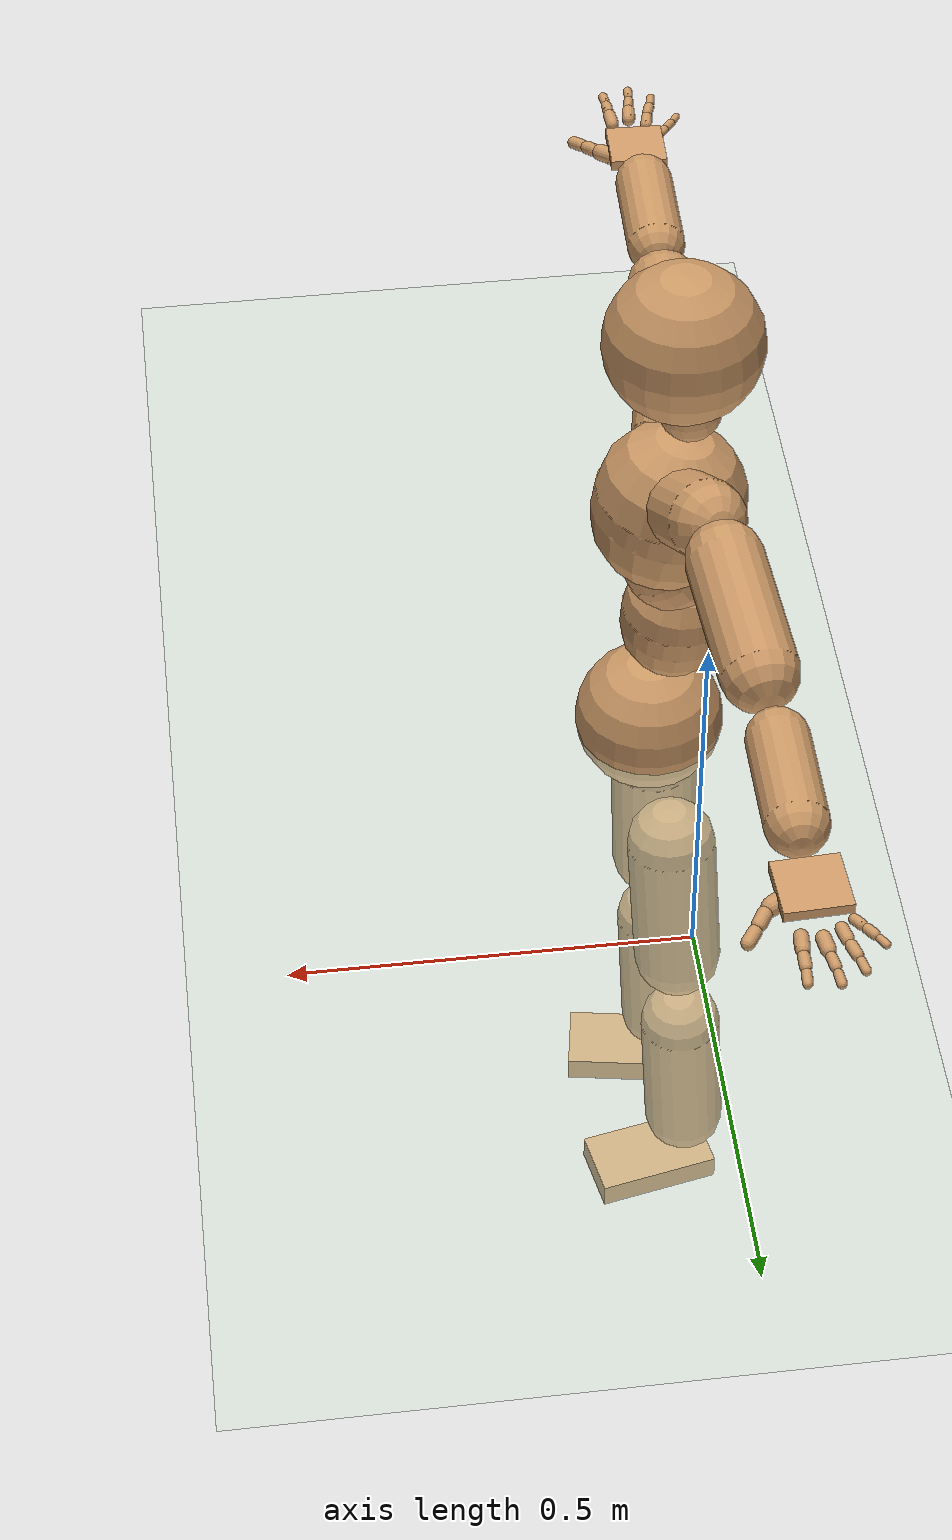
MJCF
<mujoco model="humanoid">
  <compiler coordinate="local" angle="radian"/>
  <default>
    <joint damping="0.0" armature="0.01" stiffness="0.0" limited="true"/>
    <geom conaffinity="1" condim="3" contype="7" margin="0.001" rgba="0.8 0.6 .4 1"/>
  </default>
  <asset>
    <texture type="skybox" builtin="gradient" rgb1=".4 .5 .6" rgb2="0 0 0" width="100" height="100"/>
    <texture builtin="flat" height="1278" mark="cross" markrgb="1 1 1" name="texgeom" random="0.01" rgb1="0.8 0.6 0.4" rgb2="0.8 0.6 0.4" type="cube" width="127"/>
    <texture builtin="checker" height="100" name="texplane" rgb1="0 0 0" rgb2="0.8 0.8 0.8" type="2d" width="100"/>
    <material name="MatPlane" reflectance="0.5" shininess="1" specular="1" texrepeat="60 60" texture="texplane"/>
    <material name="geom" texture="texgeom" texuniform="true"/>
  </asset>
  <worldbody>
    <light cutoff="100" diffuse="1 1 1" dir="-0 0 -1.3" directional="true" exponent="1" pos="0 0 1.3" specular=".1 .1 .1"/>
    <geom conaffinity="1" condim="3" name="floor" pos="0 0 0" rgba="0.8 0.9 0.8 1" size="100 100 .2" type="plane" material="MatPlane"/>
    <body name="Pelvis" pos="0.0006 -0.3701 0.0128">
      <freejoint name="Pelvis"/>
      <geom type="sphere" contype="1" conaffinity="1" density="500" size="0.0971" pos="0.0000 0.0000 0.0000" name="Pelvis"/>
      <body name="L_Hip" pos="-0.0184 0.073 -0.0932">
        <joint name="L_Hip_x" type="hinge" pos="0 0 0" axis="1 0 0" stiffness="800" damping="80" armature="0.02" range="-180.0000 180.0000"/>
        <joint name="L_Hip_y" type="hinge" pos="0 0 0" axis="0 1 0" stiffness="800" damping="80" armature="0.02" range="-180.0000 180.0000"/>
        <joint name="L_Hip_z" type="hinge" pos="0 0 0" axis="0 0 1" stiffness="800" damping="80" armature="0.02" range="-180.0000 180.0000"/>
        <geom type="capsule" contype="1" conaffinity="1" density="500" fromto="-0.0041 0.0049 -0.0722 -0.0165 0.0196 -0.2886" size="0.0588" name="L_Hip"/>
        <body name="L_Knee" pos="-0.0206 0.0245 -0.3608">
          <joint name="L_Knee_x" type="hinge" pos="0 0 0" axis="1 0 0" stiffness="800" damping="80" armature="0.02" range="-180.0000 180.0000"/>
          <joint name="L_Knee_y" type="hinge" pos="0 0 0" axis="0 1 0" stiffness="800" damping="80" armature="0.02" range="-180.0000 180.0000"/>
          <joint name="L_Knee_z" type="hinge" pos="0 0 0" axis="0 0 1" stiffness="800" damping="80" armature="0.02" range="-180.0000 180.0000"/>
          <geom type="capsule" contype="1" conaffinity="1" density="500" fromto="-0.0043 -0.0020 -0.0730 -0.0171 -0.0080 -0.2920" size="0.055" name="L_Knee"/>
          <body name="L_Ankle" pos="-0.0214 -0.0099 -0.3651">
            <joint name="L_Ankle_x" type="hinge" pos="0 0 0" axis="1 0 0" stiffness="800" damping="80" armature="0.02" range="-180.0000 180.0000"/>
            <joint name="L_Ankle_y" type="hinge" pos="0 0 0" axis="0 1 0" stiffness="800" damping="80" armature="0.02" range="-180.0000 180.0000"/>
            <joint name="L_Ankle_z" type="hinge" pos="0 0 0" axis="0 0 1" stiffness="800" damping="80" armature="0.02" range="-180.0000 180.0000"/>
            <geom type="box" contype="1" conaffinity="1" density="500" pos="0.0533 0.0105 -0.0206" size="0.0846 0.0464 0.0193" quat="0.9952 0.0000 0.0000 0.0974" name="L_Ankle"/>
            <body name="L_Toe" pos="0.1066 0.0211 -0.0411">
              <joint name="L_Toe_x" type="hinge" pos="0 0 0" axis="1 0 0" stiffness="500" damping="50" armature="0.02" range="-180.0000 180.0000"/>
              <joint name="L_Toe_y" type="hinge" pos="0 0 0" axis="0 1 0" stiffness="500" damping="50" armature="0.02" range="-180.0000 180.0000"/>
              <joint name="L_Toe_z" type="hinge" pos="0 0 0" axis="0 0 1" stiffness="500" damping="50" armature="0.02" range="-180.0000 180.0000"/>
              <geom type="box" contype="1" conaffinity="1" density="500" pos="0.0000 0.0000 0.0215" size="0.0009 0.0023 0.001" quat="0.9945 0.0000 0.0000 0.1044" name="L_Toe"/>
            </body>
          </body>
        </body>
      </body>
      <body name="R_Hip" pos="-0.0195 -0.0724 -0.1">
        <joint name="R_Hip_x" type="hinge" pos="0 0 0" axis="1 0 0" stiffness="800" damping="80" armature="0.02" range="-180.0000 180.0000"/>
        <joint name="R_Hip_y" type="hinge" pos="0 0 0" axis="0 1 0" stiffness="800" damping="80" armature="0.02" range="-180.0000 180.0000"/>
        <joint name="R_Hip_z" type="hinge" pos="0 0 0" axis="0 0 1" stiffness="800" damping="80" armature="0.02" range="-180.0000 180.0000"/>
        <geom type="capsule" contype="1" conaffinity="1" density="500" fromto="-0.0029 -0.0057 -0.0712 -0.0117 -0.0227 -0.2849" size="0.0586" name="R_Hip"/>
        <body name="R_Knee" pos="-0.0146 -0.0284 -0.3562">
          <joint name="R_Knee_x" type="hinge" pos="0 0 0" axis="1 0 0" stiffness="800" damping="80" armature="0.02" range="-180.0000 180.0000"/>
          <joint name="R_Knee_y" type="hinge" pos="0 0 0" axis="0 1 0" stiffness="800" damping="80" armature="0.02" range="-180.0000 180.0000"/>
          <joint name="R_Knee_z" type="hinge" pos="0 0 0" axis="0 0 1" stiffness="800" damping="80" armature="0.02" range="-180.0000 180.0000"/>
          <geom type="capsule" contype="1" conaffinity="1" density="500" fromto="-0.0035 0.0011 -0.0713 -0.0141 0.0044 -0.2853" size="0.055" name="R_Knee"/>
          <body name="R_Ankle" pos="-0.0176 0.0055 -0.3566">
            <joint name="R_Ankle_x" type="hinge" pos="0 0 0" axis="1 0 0" stiffness="800" damping="80" armature="0.02" range="-180.0000 180.0000"/>
            <joint name="R_Ankle_y" type="hinge" pos="0 0 0" axis="0 1 0" stiffness="800" damping="80" armature="0.02" range="-180.0000 180.0000"/>
            <joint name="R_Ankle_z" type="hinge" pos="0 0 0" axis="0 0 1" stiffness="800" damping="80" armature="0.02" range="-180.0000 180.0000"/>
            <geom type="box" contype="1" conaffinity="1" density="500" pos="0.0501 -0.0086 -0.0224" size="0.0846 0.0464 0.0193" quat="0.9964 0.0000 0.0000 -0.0845" name="R_Ankle"/>
            <body name="R_Toe" pos="0.1002 -0.0171 -0.0448">
              <joint name="R_Toe_x" type="hinge" pos="0 0 0" axis="1 0 0" stiffness="500" damping="50" armature="0.02" range="-180.0000 180.0000"/>
              <joint name="R_Toe_y" type="hinge" pos="0 0 0" axis="0 1 0" stiffness="500" damping="50" armature="0.02" range="-180.0000 180.0000"/>
              <joint name="R_Toe_z" type="hinge" pos="0 0 0" axis="0 0 1" stiffness="500" damping="50" armature="0.02" range="-180.0000 180.0000"/>
              <geom type="box" contype="1" conaffinity="1" density="500" pos="0.0000 0.0000 0.0233" size="0.0009 0.0023 0.001" quat="0.9973 0.0000 0.0000 -0.0733" name="R_Toe"/>
            </body>
          </body>
        </body>
      </body>
      <body name="Torso" pos="-0.0238 -0.005 0.1074">
        <joint name="Torso_x" type="hinge" pos="0 0 0" axis="1 0 0" stiffness="1000" damping="100" armature="0.02" range="-180.0000 180.0000"/>
        <joint name="Torso_y" type="hinge" pos="0 0 0" axis="0 1 0" stiffness="1000" damping="100" armature="0.02" range="-180.0000 180.0000"/>
        <joint name="Torso_z" type="hinge" pos="0 0 0" axis="0 0 1" stiffness="1000" damping="100" armature="0.02" range="-180.0000 180.0000"/>
        <geom type="capsule" contype="1" conaffinity="1" density="500" fromto="-0.0063 0.0050 0.0862 -0.0042 0.0034 0.0575" size="0.0696" name="Torso"/>
        <body name="Spine" pos="-0.0105 0.0084 0.1436">
          <joint name="Spine_x" type="hinge" pos="0 0 0" axis="1 0 0" stiffness="1000" damping="100" armature="0.02" range="-180.0000 180.0000"/>
          <joint name="Spine_y" type="hinge" pos="0 0 0" axis="0 1 0" stiffness="1000" damping="100" armature="0.02" range="-180.0000 180.0000"/>
          <joint name="Spine_z" type="hinge" pos="0 0 0" axis="0 0 1" stiffness="1000" damping="100" armature="0.02" range="-180.0000 180.0000"/>
          <geom type="capsule" contype="1" conaffinity="1" density="500" fromto="0.0185 -0.0026 0.0297 0.0123 -0.0017 0.0198" size="0.0598" name="Spine"/>
          <body name="Chest" pos="0.0308 -0.0043 0.0494">
            <joint name="Chest_x" type="hinge" pos="0 0 0" axis="1 0 0" stiffness="1000" damping="100" armature="0.02" range="-180.0000 180.0000"/>
            <joint name="Chest_y" type="hinge" pos="0 0 0" axis="0 1 0" stiffness="1000" damping="100" armature="0.02" range="-180.0000 180.0000"/>
            <joint name="Chest_z" type="hinge" pos="0 0 0" axis="0 0 1" stiffness="1000" damping="100" armature="0.02" range="-180.0000 180.0000"/>
            <geom type="capsule" contype="1" conaffinity="1" density="500" fromto="-0.0145 -0.0016 0.0840 -0.0097 -0.0011 0.0560" size="0.0957" name="Chest"/>
            <body name="Neck" pos="-0.0369 -0.0058 0.1929">
              <joint name="Neck_x" type="hinge" pos="0 0 0" axis="1 0 0" stiffness="500" damping="50" armature="0.02" range="-180.0000 180.0000"/>
              <joint name="Neck_y" type="hinge" pos="0 0 0" axis="0 1 0" stiffness="500" damping="50" armature="0.02" range="-180.0000 180.0000"/>
              <joint name="Neck_z" type="hinge" pos="0 0 0" axis="0 0 1" stiffness="500" damping="50" armature="0.02" range="-180.0000 180.0000"/>
              <geom type="capsule" contype="1" conaffinity="1" density="500" fromto="0.0031 0.0018 0.0279 0.0126 0.0071 0.1115" size="0.0394" name="Neck"/>
              <body name="Head" pos="0.0157 0.0088 0.1394">
                <joint name="Head_x" type="hinge" pos="0 0 0" axis="1 0 0" stiffness="500" damping="50" armature="0.02" range="-180.0000 180.0000"/>
                <joint name="Head_y" type="hinge" pos="0 0 0" axis="0 1 0" stiffness="500" damping="50" armature="0.02" range="-180.0000 180.0000"/>
                <joint name="Head_z" type="hinge" pos="0 0 0" axis="0 0 1" stiffness="500" damping="50" armature="0.02" range="-180.0000 180.0000"/>
                <geom type="sphere" contype="1" conaffinity="1" density="500" size="0.0986" pos="0.0000 0.0000 0.0000" name="Head"/>
              </body>
            </body>
            <body name="L_Thorax" pos="-0.0149 0.0509 0.1155">
              <joint name="L_Thorax_x" type="hinge" pos="0 0 0" axis="1 0 0" stiffness="500" damping="50" armature="0.02" range="-180.0000 180.0000"/>
              <joint name="L_Thorax_y" type="hinge" pos="0 0 0" axis="0 1 0" stiffness="500" damping="50" armature="0.02" range="-180.0000 180.0000"/>
              <joint name="L_Thorax_z" type="hinge" pos="0 0 0" axis="0 0 1" stiffness="500" damping="50" armature="0.02" range="-180.0000 180.0000"/>
              <geom type="capsule" contype="1" conaffinity="1" density="500" fromto="-0.0053 0.0172 0.0099 -0.0213 0.0689 0.0395" size="0.0497" name="L_Thorax"/>
              <body name="L_Shoulder" pos="-0.0266 0.0861 0.0494">
                <joint name="L_Shoulder_x" type="hinge" pos="0 0 0" axis="1 0 0" stiffness="500" damping="50" armature="0.02" range="-180.0000 180.0000"/>
                <joint name="L_Shoulder_y" type="hinge" pos="0 0 0" axis="0 1 0" stiffness="500" damping="50" armature="0.02" range="-180.0000 180.0000"/>
                <joint name="L_Shoulder_z" type="hinge" pos="0 0 0" axis="0 0 1" stiffness="500" damping="50" armature="0.02" range="-180.0000 180.0000"/>
                <geom type="capsule" contype="1" conaffinity="1" density="500" fromto="-0.0052 0.0527 -0.0104 -0.0210 0.2110 -0.0415" size="0.0481" name="L_Shoulder"/>
                <body name="L_Elbow" pos="-0.0262 0.2637 -0.0519">
                  <joint name="L_Elbow_x" type="hinge" pos="0 0 0" axis="1 0 0" stiffness="500" damping="50" armature="0.02" range="-720.0000 720.0000"/>
                  <joint name="L_Elbow_y" type="hinge" pos="0 0 0" axis="0 1 0" stiffness="500" damping="50" armature="0.02" range="-720.0000 720.0000"/>
                  <joint name="L_Elbow_z" type="hinge" pos="0 0 0" axis="0 0 1" stiffness="500" damping="50" armature="0.02" range="-720.0000 720.0000"/>
                  <geom type="capsule" contype="1" conaffinity="1" density="500" fromto="0.0007 0.0444 0.0015 0.0029 0.1775 0.0060" size="0.038" name="L_Elbow"/>
                  <body name="L_Wrist" pos="0.0036 0.2219 0.0075">
                    <joint name="L_Wrist_x" type="hinge" pos="0 0 0" axis="1 0 0" stiffness="300" damping="30" armature="0.02" range="-180.0000 180.0000"/>
                    <joint name="L_Wrist_y" type="hinge" pos="0 0 0" axis="0 1 0" stiffness="300" damping="30" armature="0.02" range="-180.0000 180.0000"/>
                    <joint name="L_Wrist_z" type="hinge" pos="0 0 0" axis="0 0 1" stiffness="300" damping="30" armature="0.02" range="-180.0000 180.0000"/>
                    <geom type="box" contype="1" conaffinity="1" density="500" pos="-0.0018 0.0416 -0.0081" size="0.0376 0.0399 0.007" quat="0.7226 0.0000 0.0000 -0.6913" name="L_Wrist"/>
                    <body name="L_Index1" pos="0.0203 0.0981 -0.0143">
                      <joint name="L_Index1_x" type="hinge" pos="0 0 0" axis="1 0 0" stiffness="100" damping="10" armature="0.02" range="-180.0000 180.0000"/>
                      <joint name="L_Index1_y" type="hinge" pos="0 0 0" axis="0 1 0" stiffness="100" damping="10" armature="0.02" range="-180.0000 180.0000"/>
                      <joint name="L_Index1_z" type="hinge" pos="0 0 0" axis="0 0 1" stiffness="100" damping="10" armature="0.02" range="-180.0000 180.0000"/>
                      <geom type="capsule" contype="1" conaffinity="1" density="500" fromto="0.0006 0.0062 0.0005 0.0022 0.0247 0.0021" size="0.0087" name="L_Index1"/>
                      <body name="L_Index2" pos="0.0028 0.0308 0.0027">
                        <joint name="L_Index2_x" type="hinge" pos="0 0 0" axis="1 0 0" stiffness="100" damping="10" armature="0.02" range="-180.0000 180.0000"/>
                        <joint name="L_Index2_y" type="hinge" pos="0 0 0" axis="0 1 0" stiffness="100" damping="10" armature="0.02" range="-180.0000 180.0000"/>
                        <joint name="L_Index2_z" type="hinge" pos="0 0 0" axis="0 0 1" stiffness="100" damping="10" armature="0.02" range="-180.0000 180.0000"/>
                        <geom type="capsule" contype="1" conaffinity="1" density="500" fromto="0.0001 0.0044 -0.0003 0.0003 0.0175 -0.0011" size="0.0072" name="L_Index2"/>
                        <body name="L_Index3" pos="0.0004 0.0218 -0.0014">
                          <joint name="L_Index3_x" type="hinge" pos="0 0 0" axis="1 0 0" stiffness="100" damping="10" armature="0.02" range="-180.0000 180.0000"/>
                          <joint name="L_Index3_y" type="hinge" pos="0 0 0" axis="0 1 0" stiffness="100" damping="10" armature="0.02" range="-180.0000 180.0000"/>
                          <joint name="L_Index3_z" type="hinge" pos="0 0 0" axis="0 0 1" stiffness="100" damping="10" armature="0.02" range="-180.0000 180.0000"/>
                          <geom type="capsule" contype="1" conaffinity="1" density="500" fromto="0.0005 0.0048 0.0001 0.0019 0.0191 0.0005" size="0.006" name="L_Index3"/>
                        </body>
                      </body>
                    </body>
                    <body name="L_Middle1" pos="-0.0015 0.1047 -0.0121">
                      <joint name="L_Middle1_x" type="hinge" pos="0 0 0" axis="1 0 0" stiffness="100" damping="10" armature="0.02" range="-180.0000 180.0000"/>
                      <joint name="L_Middle1_y" type="hinge" pos="0 0 0" axis="0 1 0" stiffness="100" damping="10" armature="0.02" range="-180.0000 180.0000"/>
                      <joint name="L_Middle1_z" type="hinge" pos="0 0 0" axis="0 0 1" stiffness="100" damping="10" armature="0.02" range="-180.0000 180.0000"/>
                      <geom type="capsule" contype="1" conaffinity="1" density="500" fromto="-0.0007 0.0058 0.0003 -0.0029 0.0234 0.0011" size="0.0089" name="L_Middle1"/>
                      <body name="L_Middle2" pos="-0.0036 0.0292 0.0013">
                        <joint name="L_Middle2_x" type="hinge" pos="0 0 0" axis="1 0 0" stiffness="100" damping="10" armature="0.02" range="-180.0000 180.0000"/>
                        <joint name="L_Middle2_y" type="hinge" pos="0 0 0" axis="0 1 0" stiffness="100" damping="10" armature="0.02" range="-180.0000 180.0000"/>
                        <joint name="L_Middle2_z" type="hinge" pos="0 0 0" axis="0 0 1" stiffness="100" damping="10" armature="0.02" range="-180.0000 180.0000"/>
                        <geom type="capsule" contype="1" conaffinity="1" density="500" fromto="-0.0007 0.0045 -0.0001 -0.0029 0.0181 -0.0004" size="0.0066" name="L_Middle2"/>
                        <body name="L_Middle3" pos="-0.0036 0.0226 -0.0006">
                          <joint name="L_Middle3_x" type="hinge" pos="0 0 0" axis="1 0 0" stiffness="100" damping="10" armature="0.02" range="-180.0000 180.0000"/>
                          <joint name="L_Middle3_y" type="hinge" pos="0 0 0" axis="0 1 0" stiffness="100" damping="10" armature="0.02" range="-180.0000 180.0000"/>
                          <joint name="L_Middle3_z" type="hinge" pos="0 0 0" axis="0 0 1" stiffness="100" damping="10" armature="0.02" range="-180.0000 180.0000"/>
                          <geom type="capsule" contype="1" conaffinity="1" density="500" fromto="-0.0003 0.0049 0.0003 -0.0013 0.0197 0.0012" size="0.0058" name="L_Middle3"/>
                        </body>
                      </body>
                    </body>
                    <body name="L_Pinky1" pos="-0.0394 0.0799 -0.0191">
                      <joint name="L_Pinky1_x" type="hinge" pos="0 0 0" axis="1 0 0" stiffness="100" damping="10" armature="0.02" range="-180.0000 180.0000"/>
                      <joint name="L_Pinky1_y" type="hinge" pos="0 0 0" axis="0 1 0" stiffness="100" damping="10" armature="0.02" range="-180.0000 180.0000"/>
                      <joint name="L_Pinky1_z" type="hinge" pos="0 0 0" axis="0 0 1" stiffness="100" damping="10" armature="0.02" range="-180.0000 180.0000"/>
                      <geom type="capsule" contype="1" conaffinity="1" density="500" fromto="-0.0023 0.0028 -0.0001 -0.0093 0.0113 -0.0003" size="0.0064" name="L_Pinky1"/>
                      <body name="L_Pinky2" pos="-0.0116 0.0141 -0.0004">
                        <joint name="L_Pinky2_x" type="hinge" pos="0 0 0" axis="1 0 0" stiffness="100" damping="10" armature="0.02" range="-180.0000 180.0000"/>
                        <joint name="L_Pinky2_y" type="hinge" pos="0 0 0" axis="0 1 0" stiffness="100" damping="10" armature="0.02" range="-180.0000 180.0000"/>
                        <joint name="L_Pinky2_z" type="hinge" pos="0 0 0" axis="0 0 1" stiffness="100" damping="10" armature="0.02" range="-180.0000 180.0000"/>
                        <geom type="capsule" contype="1" conaffinity="1" density="500" fromto="-0.0023 0.0029 -0.0002 -0.0090 0.0116 -0.0007" size="0.0062" name="L_Pinky2"/>
                        <body name="L_Pinky3" pos="-0.0113 0.0145 -0.0009">
                          <joint name="L_Pinky3_x" type="hinge" pos="0 0 0" axis="1 0 0" stiffness="100" damping="10" armature="0.02" range="-180.0000 180.0000"/>
                          <joint name="L_Pinky3_y" type="hinge" pos="0 0 0" axis="0 1 0" stiffness="100" damping="10" armature="0.02" range="-180.0000 180.0000"/>
                          <joint name="L_Pinky3_z" type="hinge" pos="0 0 0" axis="0 0 1" stiffness="100" damping="10" armature="0.02" range="-180.0000 180.0000"/>
                          <geom type="capsule" contype="1" conaffinity="1" density="500" fromto="-0.0019 0.0033 0.0002 -0.0074 0.0132 0.0009" size="0.0048" name="L_Pinky3"/>
                        </body>
                      </body>
                    </body>
                    <body name="L_Ring1" pos="-0.0238 0.0928 -0.0144">
                      <joint name="L_Ring1_x" type="hinge" pos="0 0 0" axis="1 0 0" stiffness="100" damping="10" armature="0.02" range="-180.0000 180.0000"/>
                      <joint name="L_Ring1_y" type="hinge" pos="0 0 0" axis="0 1 0" stiffness="100" damping="10" armature="0.02" range="-180.0000 180.0000"/>
                      <joint name="L_Ring1_z" type="hinge" pos="0 0 0" axis="0 0 1" stiffness="100" damping="10" armature="0.02" range="-180.0000 180.0000"/>
                      <geom type="capsule" contype="1" conaffinity="1" density="500" fromto="-0.0010 0.0053 0.0003 -0.0041 0.0212 0.0013" size="0.0077" name="L_Ring1"/>
                      <body name="L_Ring2" pos="-0.0051 0.0265 0.0016">
                        <joint name="L_Ring2_x" type="hinge" pos="0 0 0" axis="1 0 0" stiffness="100" damping="10" armature="0.02" range="-180.0000 180.0000"/>
                        <joint name="L_Ring2_y" type="hinge" pos="0 0 0" axis="0 1 0" stiffness="100" damping="10" armature="0.02" range="-180.0000 180.0000"/>
                        <joint name="L_Ring2_z" type="hinge" pos="0 0 0" axis="0 0 1" stiffness="100" damping="10" armature="0.02" range="-180.0000 180.0000"/>
                        <geom type="capsule" contype="1" conaffinity="1" density="500" fromto="-0.0014 0.0043 -0.0002 -0.0055 0.0174 -0.0007" size="0.0071" name="L_Ring2"/>
                        <body name="L_Ring3" pos="-0.0069 0.0217 -0.0009">
                          <joint name="L_Ring3_x" type="hinge" pos="0 0 0" axis="1 0 0" stiffness="100" damping="10" armature="0.02" range="-180.0000 180.0000"/>
                          <joint name="L_Ring3_y" type="hinge" pos="0 0 0" axis="0 1 0" stiffness="100" damping="10" armature="0.02" range="-180.0000 180.0000"/>
                          <joint name="L_Ring3_z" type="hinge" pos="0 0 0" axis="0 0 1" stiffness="100" damping="10" armature="0.02" range="-180.0000 180.0000"/>
                          <geom type="capsule" contype="1" conaffinity="1" density="500" fromto="-0.0010 0.0047 0.0002 -0.0039 0.0190 0.0009" size="0.0055" name="L_Ring3"/>
                        </body>
                      </body>
                    </body>
                    <body name="L_Thumb1" pos="0.026 0.0404 -0.0212">
                      <joint name="L_Thumb1_x" type="hinge" pos="0 0 0" axis="1 0 0" stiffness="100" damping="10" armature="0.02" range="-180.0000 180.0000"/>
                      <joint name="L_Thumb1_y" type="hinge" pos="0 0 0" axis="0 1 0" stiffness="100" damping="10" armature="0.02" range="-180.0000 180.0000"/>
                      <joint name="L_Thumb1_z" type="hinge" pos="0 0 0" axis="0 0 1" stiffness="100" damping="10" armature="0.02" range="-180.0000 180.0000"/>
                      <geom type="capsule" contype="1" conaffinity="1" density="500" fromto="0.0046 0.0033 0.0001 0.0185 0.0133 0.0006" size="0.0113" name="L_Thumb1"/>
                      <body name="L_Thumb2" pos="0.0231 0.0166 0.0007">
                        <joint name="L_Thumb2_x" type="hinge" pos="0 0 0" axis="1 0 0" stiffness="100" damping="10" armature="0.02" range="-180.0000 180.0000"/>
                        <joint name="L_Thumb2_y" type="hinge" pos="0 0 0" axis="0 1 0" stiffness="100" damping="10" armature="0.02" range="-180.0000 180.0000"/>
                        <joint name="L_Thumb2_z" type="hinge" pos="0 0 0" axis="0 0 1" stiffness="100" damping="10" armature="0.02" range="-180.0000 180.0000"/>
                        <geom type="capsule" contype="1" conaffinity="1" density="500" fromto="0.0028 0.0039 -0.0011 0.0112 0.0157 -0.0045" size="0.0089" name="L_Thumb2"/>
                        <body name="L_Thumb3" pos="0.014 0.0197 -0.0056">
                          <joint name="L_Thumb3_x" type="hinge" pos="0 0 0" axis="1 0 0" stiffness="100" damping="10" armature="0.02" range="-180.0000 180.0000"/>
                          <joint name="L_Thumb3_y" type="hinge" pos="0 0 0" axis="0 1 0" stiffness="100" damping="10" armature="0.02" range="-180.0000 180.0000"/>
                          <joint name="L_Thumb3_z" type="hinge" pos="0 0 0" axis="0 0 1" stiffness="100" damping="10" armature="0.02" range="-180.0000 180.0000"/>
                          <geom type="capsule" contype="1" conaffinity="1" density="500" fromto="0.0032 0.0043 -0.0007 0.0128 0.0173 -0.0029" size="0.0083" name="L_Thumb3"/>
                        </body>
                      </body>
                    </body>
                  </body>
                </body>
              </body>
            </body>
            <body name="R_Thorax" pos="-0.0209 -0.0533 0.1118">
              <joint name="R_Thorax_x" type="hinge" pos="0 0 0" axis="1 0 0" stiffness="500" damping="50" armature="0.02" range="-180.0000 180.0000"/>
              <joint name="R_Thorax_y" type="hinge" pos="0 0 0" axis="0 1 0" stiffness="500" damping="50" armature="0.02" range="-180.0000 180.0000"/>
              <joint name="R_Thorax_z" type="hinge" pos="0 0 0" axis="0 0 1" stiffness="500" damping="50" armature="0.02" range="-180.0000 180.0000"/>
              <geom type="capsule" contype="1" conaffinity="1" density="500" fromto="-0.0041 -0.0186 0.0105 -0.0164 -0.0743 0.0421" size="0.0508" name="R_Thorax"/>
              <body name="R_Shoulder" pos="-0.0205 -0.0929 0.0526">
                <joint name="R_Shoulder_x" type="hinge" pos="0 0 0" axis="1 0 0" stiffness="500" damping="50" armature="0.02" range="-180.0000 180.0000"/>
                <joint name="R_Shoulder_y" type="hinge" pos="0 0 0" axis="0 1 0" stiffness="500" damping="50" armature="0.02" range="-180.0000 180.0000"/>
                <joint name="R_Shoulder_z" type="hinge" pos="0 0 0" axis="0 0 1" stiffness="500" damping="50" armature="0.02" range="-180.0000 180.0000"/>
                <geom type="capsule" contype="1" conaffinity="1" density="500" fromto="-0.0038 -0.0508 -0.0096 -0.0153 -0.2034 -0.0385" size="0.0485" name="R_Shoulder"/>
                <body name="R_Elbow" pos="-0.0191 -0.2542 -0.0481">
                  <joint name="R_Elbow_x" type="hinge" pos="0 0 0" axis="1 0 0" stiffness="500" damping="50" armature="0.02" range="-720.0000 720.0000"/>
                  <joint name="R_Elbow_y" type="hinge" pos="0 0 0" axis="0 1 0" stiffness="500" damping="50" armature="0.02" range="-720.0000 720.0000"/>
                  <joint name="R_Elbow_z" type="hinge" pos="0 0 0" axis="0 0 1" stiffness="500" damping="50" armature="0.02" range="-720.0000 720.0000"/>
                  <geom type="capsule" contype="1" conaffinity="1" density="500" fromto="-0.0010 -0.0445 0.0007 -0.0041 -0.1780 0.0027" size="0.0382" name="R_Elbow"/>
                  <body name="R_Wrist" pos="-0.0051 -0.2226 0.0034">
                    <joint name="R_Wrist_x" type="hinge" pos="0 0 0" axis="1 0 0" stiffness="300" damping="30" armature="0.02" range="-180.0000 180.0000"/>
                    <joint name="R_Wrist_y" type="hinge" pos="0 0 0" axis="0 1 0" stiffness="300" damping="30" armature="0.02" range="-180.0000 180.0000"/>
                    <joint name="R_Wrist_z" type="hinge" pos="0 0 0" axis="0 0 1" stiffness="300" damping="30" armature="0.02" range="-180.0000 180.0000"/>
                    <geom type="box" contype="1" conaffinity="1" density="500" pos="-0.0011 -0.0410 -0.0077" size="0.0376 0.0375 0.0071" quat="0.7164 0.0000 0.0000 0.6977" name="R_Wrist"/>
                    <body name="R_Index1" pos="0.0218 -0.097 -0.0135">
                      <joint name="R_Index1_x" type="hinge" pos="0 0 0" axis="1 0 0" stiffness="100" damping="10" armature="0.02" range="-180.0000 180.0000"/>
                      <joint name="R_Index1_y" type="hinge" pos="0 0 0" axis="0 1 0" stiffness="100" damping="10" armature="0.02" range="-180.0000 180.0000"/>
                      <joint name="R_Index1_z" type="hinge" pos="0 0 0" axis="0 0 1" stiffness="100" damping="10" armature="0.02" range="-180.0000 180.0000"/>
                      <geom type="capsule" contype="1" conaffinity="1" density="500" fromto="0.0006 -0.0062 0.0005 0.0022 -0.0247 0.0021" size="0.0087" name="R_Index1"/>
                      <body name="R_Index2" pos="0.0028 -0.0308 0.0027">
                        <joint name="R_Index2_x" type="hinge" pos="0 0 0" axis="1 0 0" stiffness="100" damping="10" armature="0.02" range="-180.0000 180.0000"/>
                        <joint name="R_Index2_y" type="hinge" pos="0 0 0" axis="0 1 0" stiffness="100" damping="10" armature="0.02" range="-180.0000 180.0000"/>
                        <joint name="R_Index2_z" type="hinge" pos="0 0 0" axis="0 0 1" stiffness="100" damping="10" armature="0.02" range="-180.0000 180.0000"/>
                        <geom type="capsule" contype="1" conaffinity="1" density="500" fromto="0.0001 -0.0044 -0.0003 0.0003 -0.0175 -0.0011" size="0.0072" name="R_Index2"/>
                        <body name="R_Index3" pos="0.0004 -0.0218 -0.0014">
                          <joint name="R_Index3_x" type="hinge" pos="0 0 0" axis="1 0 0" stiffness="100" damping="10" armature="0.02" range="-180.0000 180.0000"/>
                          <joint name="R_Index3_y" type="hinge" pos="0 0 0" axis="0 1 0" stiffness="100" damping="10" armature="0.02" range="-180.0000 180.0000"/>
                          <joint name="R_Index3_z" type="hinge" pos="0 0 0" axis="0 0 1" stiffness="100" damping="10" armature="0.02" range="-180.0000 180.0000"/>
                          <geom type="capsule" contype="1" conaffinity="1" density="500" fromto="0.0005 -0.0040 0.0001 0.0019 -0.0159 0.0005" size="0.0063" name="R_Index3"/>
                        </body>
                      </body>
                    </body>
                    <body name="R_Middle1" pos="0 -0.1037 -0.0113">
                      <joint name="R_Middle1_x" type="hinge" pos="0 0 0" axis="1 0 0" stiffness="100" damping="10" armature="0.02" range="-180.0000 180.0000"/>
                      <joint name="R_Middle1_y" type="hinge" pos="0 0 0" axis="0 1 0" stiffness="100" damping="10" armature="0.02" range="-180.0000 180.0000"/>
                      <joint name="R_Middle1_z" type="hinge" pos="0 0 0" axis="0 0 1" stiffness="100" damping="10" armature="0.02" range="-180.0000 180.0000"/>
                      <geom type="capsule" contype="1" conaffinity="1" density="500" fromto="-0.0007 -0.0058 0.0003 -0.0029 -0.0234 0.0011" size="0.0089" name="R_Middle1"/>
                      <body name="R_Middle2" pos="-0.0036 -0.0292 0.0013">
                        <joint name="R_Middle2_x" type="hinge" pos="0 0 0" axis="1 0 0" stiffness="100" damping="10" armature="0.02" range="-180.0000 180.0000"/>
                        <joint name="R_Middle2_y" type="hinge" pos="0 0 0" axis="0 1 0" stiffness="100" damping="10" armature="0.02" range="-180.0000 180.0000"/>
                        <joint name="R_Middle2_z" type="hinge" pos="0 0 0" axis="0 0 1" stiffness="100" damping="10" armature="0.02" range="-180.0000 180.0000"/>
                        <geom type="capsule" contype="1" conaffinity="1" density="500" fromto="-0.0007 -0.0045 -0.0001 -0.0029 -0.0181 -0.0004" size="0.0066" name="R_Middle2"/>
                        <body name="R_Middle3" pos="-0.0036 -0.0226 -0.0006">
                          <joint name="R_Middle3_x" type="hinge" pos="0 0 0" axis="1 0 0" stiffness="100" damping="10" armature="0.02" range="-180.0000 180.0000"/>
                          <joint name="R_Middle3_y" type="hinge" pos="0 0 0" axis="0 1 0" stiffness="100" damping="10" armature="0.02" range="-180.0000 180.0000"/>
                          <joint name="R_Middle3_z" type="hinge" pos="0 0 0" axis="0 0 1" stiffness="100" damping="10" armature="0.02" range="-180.0000 180.0000"/>
                          <geom type="capsule" contype="1" conaffinity="1" density="500" fromto="-0.0003 -0.0041 0.0003 -0.0013 -0.0165 0.0012" size="0.006" name="R_Middle3"/>
                        </body>
                      </body>
                    </body>
                    <body name="R_Pinky1" pos="-0.0379 -0.0788 -0.0183">
                      <joint name="R_Pinky1_x" type="hinge" pos="0 0 0" axis="1 0 0" stiffness="100" damping="10" armature="0.02" range="-180.0000 180.0000"/>
                      <joint name="R_Pinky1_y" type="hinge" pos="0 0 0" axis="0 1 0" stiffness="100" damping="10" armature="0.02" range="-180.0000 180.0000"/>
                      <joint name="R_Pinky1_z" type="hinge" pos="0 0 0" axis="0 0 1" stiffness="100" damping="10" armature="0.02" range="-180.0000 180.0000"/>
                      <geom type="capsule" contype="1" conaffinity="1" density="500" fromto="-0.0023 -0.0028 -0.0001 -0.0093 -0.0113 -0.0003" size="0.0064" name="R_Pinky1"/>
                      <body name="R_Pinky2" pos="-0.0116 -0.0141 -0.0004">
                        <joint name="R_Pinky2_x" type="hinge" pos="0 0 0" axis="1 0 0" stiffness="100" damping="10" armature="0.02" range="-180.0000 180.0000"/>
                        <joint name="R_Pinky2_y" type="hinge" pos="0 0 0" axis="0 1 0" stiffness="100" damping="10" armature="0.02" range="-180.0000 180.0000"/>
                        <joint name="R_Pinky2_z" type="hinge" pos="0 0 0" axis="0 0 1" stiffness="100" damping="10" armature="0.02" range="-180.0000 180.0000"/>
                        <geom type="capsule" contype="1" conaffinity="1" density="500" fromto="-0.0023 -0.0029 -0.0002 -0.0090 -0.0116 -0.0007" size="0.0062" name="R_Pinky2"/>
                        <body name="R_Pinky3" pos="-0.0113 -0.0145 -0.0009">
                          <joint name="R_Pinky3_x" type="hinge" pos="0 0 0" axis="1 0 0" stiffness="100" damping="10" armature="0.02" range="-180.0000 180.0000"/>
                          <joint name="R_Pinky3_y" type="hinge" pos="0 0 0" axis="0 1 0" stiffness="100" damping="10" armature="0.02" range="-180.0000 180.0000"/>
                          <joint name="R_Pinky3_z" type="hinge" pos="0 0 0" axis="0 0 1" stiffness="100" damping="10" armature="0.02" range="-180.0000 180.0000"/>
                          <geom type="capsule" contype="1" conaffinity="1" density="500" fromto="-0.0019 -0.0025 0.0002 -0.0074 -0.0100 0.0009" size="0.005" name="R_Pinky3"/>
                        </body>
                      </body>
                    </body>
                    <body name="R_Ring1" pos="-0.0223 -0.0917 -0.0136">
                      <joint name="R_Ring1_x" type="hinge" pos="0 0 0" axis="1 0 0" stiffness="100" damping="10" armature="0.02" range="-180.0000 180.0000"/>
                      <joint name="R_Ring1_y" type="hinge" pos="0 0 0" axis="0 1 0" stiffness="100" damping="10" armature="0.02" range="-180.0000 180.0000"/>
                      <joint name="R_Ring1_z" type="hinge" pos="0 0 0" axis="0 0 1" stiffness="100" damping="10" armature="0.02" range="-180.0000 180.0000"/>
                      <geom type="capsule" contype="1" conaffinity="1" density="500" fromto="-0.0010 -0.0053 0.0003 -0.0041 -0.0212 0.0013" size="0.0077" name="R_Ring1"/>
                      <body name="R_Ring2" pos="-0.0051 -0.0265 0.0016">
                        <joint name="R_Ring2_x" type="hinge" pos="0 0 0" axis="1 0 0" stiffness="100" damping="10" armature="0.02" range="-180.0000 180.0000"/>
                        <joint name="R_Ring2_y" type="hinge" pos="0 0 0" axis="0 1 0" stiffness="100" damping="10" armature="0.02" range="-180.0000 180.0000"/>
                        <joint name="R_Ring2_z" type="hinge" pos="0 0 0" axis="0 0 1" stiffness="100" damping="10" armature="0.02" range="-180.0000 180.0000"/>
                        <geom type="capsule" contype="1" conaffinity="1" density="500" fromto="-0.0014 -0.0043 -0.0002 -0.0055 -0.0174 -0.0007" size="0.0071" name="R_Ring2"/>
                        <body name="R_Ring3" pos="-0.0069 -0.0217 -0.0009">
                          <joint name="R_Ring3_x" type="hinge" pos="0 0 0" axis="1 0 0" stiffness="100" damping="10" armature="0.02" range="-180.0000 180.0000"/>
                          <joint name="R_Ring3_y" type="hinge" pos="0 0 0" axis="0 1 0" stiffness="100" damping="10" armature="0.02" range="-180.0000 180.0000"/>
                          <joint name="R_Ring3_z" type="hinge" pos="0 0 0" axis="0 0 1" stiffness="100" damping="10" armature="0.02" range="-180.0000 180.0000"/>
                          <geom type="capsule" contype="1" conaffinity="1" density="500" fromto="-0.0010 -0.0039 0.0002 -0.0039 -0.0158 0.0009" size="0.0058" name="R_Ring3"/>
                        </body>
                      </body>
                    </body>
                    <body name="R_Thumb1" pos="0.0275 -0.0393 -0.0204">
                      <joint name="R_Thumb1_x" type="hinge" pos="0 0 0" axis="1 0 0" stiffness="100" damping="10" armature="0.02" range="-180.0000 180.0000"/>
                      <joint name="R_Thumb1_y" type="hinge" pos="0 0 0" axis="0 1 0" stiffness="100" damping="10" armature="0.02" range="-180.0000 180.0000"/>
                      <joint name="R_Thumb1_z" type="hinge" pos="0 0 0" axis="0 0 1" stiffness="100" damping="10" armature="0.02" range="-180.0000 180.0000"/>
                      <geom type="capsule" contype="1" conaffinity="1" density="500" fromto="0.0046 -0.0033 0.0001 0.0185 -0.0133 0.0006" size="0.0113" name="R_Thumb1"/>
                      <body name="R_Thumb2" pos="0.0231 -0.0166 0.0007">
                        <joint name="R_Thumb2_x" type="hinge" pos="0 0 0" axis="1 0 0" stiffness="100" damping="10" armature="0.02" range="-180.0000 180.0000"/>
                        <joint name="R_Thumb2_y" type="hinge" pos="0 0 0" axis="0 1 0" stiffness="100" damping="10" armature="0.02" range="-180.0000 180.0000"/>
                        <joint name="R_Thumb2_z" type="hinge" pos="0 0 0" axis="0 0 1" stiffness="100" damping="10" armature="0.02" range="-180.0000 180.0000"/>
                        <geom type="capsule" contype="1" conaffinity="1" density="500" fromto="0.0028 -0.0039 -0.0011 0.0112 -0.0157 -0.0045" size="0.0089" name="R_Thumb2"/>
                        <body name="R_Thumb3" pos="0.014 -0.0197 -0.0056">
                          <joint name="R_Thumb3_x" type="hinge" pos="0 0 0" axis="1 0 0" stiffness="100" damping="10" armature="0.02" range="-180.0000 180.0000"/>
                          <joint name="R_Thumb3_y" type="hinge" pos="0 0 0" axis="0 1 0" stiffness="100" damping="10" armature="0.02" range="-180.0000 180.0000"/>
                          <joint name="R_Thumb3_z" type="hinge" pos="0 0 0" axis="0 0 1" stiffness="100" damping="10" armature="0.02" range="-180.0000 180.0000"/>
                          <geom type="capsule" contype="1" conaffinity="1" density="500" fromto="0.0032 -0.0035 -0.0007 0.0128 -0.0141 -0.0029" size="0.0085" name="R_Thumb3"/>
                        </body>
                      </body>
                    </body>
                  </body>
                </body>
              </body>
            </body>
          </body>
        </body>
      </body>
    </body>
  </worldbody>
  <actuator>
    <motor name="L_Hip_x" joint="L_Hip_x" gear="500"/>
    <motor name="L_Hip_y" joint="L_Hip_y" gear="500"/>
    <motor name="L_Hip_z" joint="L_Hip_z" gear="500"/>
    <motor name="L_Knee_x" joint="L_Knee_x" gear="500"/>
    <motor name="L_Knee_y" joint="L_Knee_y" gear="500"/>
    <motor name="L_Knee_z" joint="L_Knee_z" gear="500"/>
    <motor name="L_Ankle_x" joint="L_Ankle_x" gear="500"/>
    <motor name="L_Ankle_y" joint="L_Ankle_y" gear="500"/>
    <motor name="L_Ankle_z" joint="L_Ankle_z" gear="500"/>
    <motor name="L_Toe_x" joint="L_Toe_x" gear="500"/>
    <motor name="L_Toe_y" joint="L_Toe_y" gear="500"/>
    <motor name="L_Toe_z" joint="L_Toe_z" gear="500"/>
    <motor name="R_Hip_x" joint="R_Hip_x" gear="500"/>
    <motor name="R_Hip_y" joint="R_Hip_y" gear="500"/>
    <motor name="R_Hip_z" joint="R_Hip_z" gear="500"/>
    <motor name="R_Knee_x" joint="R_Knee_x" gear="500"/>
    <motor name="R_Knee_y" joint="R_Knee_y" gear="500"/>
    <motor name="R_Knee_z" joint="R_Knee_z" gear="500"/>
    <motor name="R_Ankle_x" joint="R_Ankle_x" gear="500"/>
    <motor name="R_Ankle_y" joint="R_Ankle_y" gear="500"/>
    <motor name="R_Ankle_z" joint="R_Ankle_z" gear="500"/>
    <motor name="R_Toe_x" joint="R_Toe_x" gear="500"/>
    <motor name="R_Toe_y" joint="R_Toe_y" gear="500"/>
    <motor name="R_Toe_z" joint="R_Toe_z" gear="500"/>
    <motor name="Torso_x" joint="Torso_x" gear="500"/>
    <motor name="Torso_y" joint="Torso_y" gear="500"/>
    <motor name="Torso_z" joint="Torso_z" gear="500"/>
    <motor name="Spine_x" joint="Spine_x" gear="500"/>
    <motor name="Spine_y" joint="Spine_y" gear="500"/>
    <motor name="Spine_z" joint="Spine_z" gear="500"/>
    <motor name="Chest_x" joint="Chest_x" gear="500"/>
    <motor name="Chest_y" joint="Chest_y" gear="500"/>
    <motor name="Chest_z" joint="Chest_z" gear="500"/>
    <motor name="Neck_x" joint="Neck_x" gear="500"/>
    <motor name="Neck_y" joint="Neck_y" gear="500"/>
    <motor name="Neck_z" joint="Neck_z" gear="500"/>
    <motor name="Head_x" joint="Head_x" gear="500"/>
    <motor name="Head_y" joint="Head_y" gear="500"/>
    <motor name="Head_z" joint="Head_z" gear="500"/>
    <motor name="L_Thorax_x" joint="L_Thorax_x" gear="500"/>
    <motor name="L_Thorax_y" joint="L_Thorax_y" gear="500"/>
    <motor name="L_Thorax_z" joint="L_Thorax_z" gear="500"/>
    <motor name="L_Shoulder_x" joint="L_Shoulder_x" gear="500"/>
    <motor name="L_Shoulder_y" joint="L_Shoulder_y" gear="500"/>
    <motor name="L_Shoulder_z" joint="L_Shoulder_z" gear="500"/>
    <motor name="L_Elbow_x" joint="L_Elbow_x" gear="500"/>
    <motor name="L_Elbow_y" joint="L_Elbow_y" gear="500"/>
    <motor name="L_Elbow_z" joint="L_Elbow_z" gear="500"/>
    <motor name="L_Wrist_x" joint="L_Wrist_x" gear="500"/>
    <motor name="L_Wrist_y" joint="L_Wrist_y" gear="500"/>
    <motor name="L_Wrist_z" joint="L_Wrist_z" gear="500"/>
    <motor name="L_Index1_x" joint="L_Index1_x" gear="500"/>
    <motor name="L_Index1_y" joint="L_Index1_y" gear="500"/>
    <motor name="L_Index1_z" joint="L_Index1_z" gear="500"/>
    <motor name="L_Index2_x" joint="L_Index2_x" gear="500"/>
    <motor name="L_Index2_y" joint="L_Index2_y" gear="500"/>
    <motor name="L_Index2_z" joint="L_Index2_z" gear="500"/>
    <motor name="L_Index3_x" joint="L_Index3_x" gear="500"/>
    <motor name="L_Index3_y" joint="L_Index3_y" gear="500"/>
    <motor name="L_Index3_z" joint="L_Index3_z" gear="500"/>
    <motor name="L_Middle1_x" joint="L_Middle1_x" gear="500"/>
    <motor name="L_Middle1_y" joint="L_Middle1_y" gear="500"/>
    <motor name="L_Middle1_z" joint="L_Middle1_z" gear="500"/>
    <motor name="L_Middle2_x" joint="L_Middle2_x" gear="500"/>
    <motor name="L_Middle2_y" joint="L_Middle2_y" gear="500"/>
    <motor name="L_Middle2_z" joint="L_Middle2_z" gear="500"/>
    <motor name="L_Middle3_x" joint="L_Middle3_x" gear="500"/>
    <motor name="L_Middle3_y" joint="L_Middle3_y" gear="500"/>
    <motor name="L_Middle3_z" joint="L_Middle3_z" gear="500"/>
    <motor name="L_Pinky1_x" joint="L_Pinky1_x" gear="500"/>
    <motor name="L_Pinky1_y" joint="L_Pinky1_y" gear="500"/>
    <motor name="L_Pinky1_z" joint="L_Pinky1_z" gear="500"/>
    <motor name="L_Pinky2_x" joint="L_Pinky2_x" gear="500"/>
    <motor name="L_Pinky2_y" joint="L_Pinky2_y" gear="500"/>
    <motor name="L_Pinky2_z" joint="L_Pinky2_z" gear="500"/>
    <motor name="L_Pinky3_x" joint="L_Pinky3_x" gear="500"/>
    <motor name="L_Pinky3_y" joint="L_Pinky3_y" gear="500"/>
    <motor name="L_Pinky3_z" joint="L_Pinky3_z" gear="500"/>
    <motor name="L_Ring1_x" joint="L_Ring1_x" gear="500"/>
    <motor name="L_Ring1_y" joint="L_Ring1_y" gear="500"/>
    <motor name="L_Ring1_z" joint="L_Ring1_z" gear="500"/>
    <motor name="L_Ring2_x" joint="L_Ring2_x" gear="500"/>
    <motor name="L_Ring2_y" joint="L_Ring2_y" gear="500"/>
    <motor name="L_Ring2_z" joint="L_Ring2_z" gear="500"/>
    <motor name="L_Ring3_x" joint="L_Ring3_x" gear="500"/>
    <motor name="L_Ring3_y" joint="L_Ring3_y" gear="500"/>
    <motor name="L_Ring3_z" joint="L_Ring3_z" gear="500"/>
    <motor name="L_Thumb1_x" joint="L_Thumb1_x" gear="500"/>
    <motor name="L_Thumb1_y" joint="L_Thumb1_y" gear="500"/>
    <motor name="L_Thumb1_z" joint="L_Thumb1_z" gear="500"/>
    <motor name="L_Thumb2_x" joint="L_Thumb2_x" gear="500"/>
    <motor name="L_Thumb2_y" joint="L_Thumb2_y" gear="500"/>
    <motor name="L_Thumb2_z" joint="L_Thumb2_z" gear="500"/>
    <motor name="L_Thumb3_x" joint="L_Thumb3_x" gear="500"/>
    <motor name="L_Thumb3_y" joint="L_Thumb3_y" gear="500"/>
    <motor name="L_Thumb3_z" joint="L_Thumb3_z" gear="500"/>
    <motor name="R_Thorax_x" joint="R_Thorax_x" gear="500"/>
    <motor name="R_Thorax_y" joint="R_Thorax_y" gear="500"/>
    <motor name="R_Thorax_z" joint="R_Thorax_z" gear="500"/>
    <motor name="R_Shoulder_x" joint="R_Shoulder_x" gear="500"/>
    <motor name="R_Shoulder_y" joint="R_Shoulder_y" gear="500"/>
    <motor name="R_Shoulder_z" joint="R_Shoulder_z" gear="500"/>
    <motor name="R_Elbow_x" joint="R_Elbow_x" gear="500"/>
    <motor name="R_Elbow_y" joint="R_Elbow_y" gear="500"/>
    <motor name="R_Elbow_z" joint="R_Elbow_z" gear="500"/>
    <motor name="R_Wrist_x" joint="R_Wrist_x" gear="500"/>
    <motor name="R_Wrist_y" joint="R_Wrist_y" gear="500"/>
    <motor name="R_Wrist_z" joint="R_Wrist_z" gear="500"/>
    <motor name="R_Index1_x" joint="R_Index1_x" gear="500"/>
    <motor name="R_Index1_y" joint="R_Index1_y" gear="500"/>
    <motor name="R_Index1_z" joint="R_Index1_z" gear="500"/>
    <motor name="R_Index2_x" joint="R_Index2_x" gear="500"/>
    <motor name="R_Index2_y" joint="R_Index2_y" gear="500"/>
    <motor name="R_Index2_z" joint="R_Index2_z" gear="500"/>
    <motor name="R_Index3_x" joint="R_Index3_x" gear="500"/>
    <motor name="R_Index3_y" joint="R_Index3_y" gear="500"/>
    <motor name="R_Index3_z" joint="R_Index3_z" gear="500"/>
    <motor name="R_Middle1_x" joint="R_Middle1_x" gear="500"/>
    <motor name="R_Middle1_y" joint="R_Middle1_y" gear="500"/>
    <motor name="R_Middle1_z" joint="R_Middle1_z" gear="500"/>
    <motor name="R_Middle2_x" joint="R_Middle2_x" gear="500"/>
    <motor name="R_Middle2_y" joint="R_Middle2_y" gear="500"/>
    <motor name="R_Middle2_z" joint="R_Middle2_z" gear="500"/>
    <motor name="R_Middle3_x" joint="R_Middle3_x" gear="500"/>
    <motor name="R_Middle3_y" joint="R_Middle3_y" gear="500"/>
    <motor name="R_Middle3_z" joint="R_Middle3_z" gear="500"/>
    <motor name="R_Pinky1_x" joint="R_Pinky1_x" gear="500"/>
    <motor name="R_Pinky1_y" joint="R_Pinky1_y" gear="500"/>
    <motor name="R_Pinky1_z" joint="R_Pinky1_z" gear="500"/>
    <motor name="R_Pinky2_x" joint="R_Pinky2_x" gear="500"/>
    <motor name="R_Pinky2_y" joint="R_Pinky2_y" gear="500"/>
    <motor name="R_Pinky2_z" joint="R_Pinky2_z" gear="500"/>
    <motor name="R_Pinky3_x" joint="R_Pinky3_x" gear="500"/>
    <motor name="R_Pinky3_y" joint="R_Pinky3_y" gear="500"/>
    <motor name="R_Pinky3_z" joint="R_Pinky3_z" gear="500"/>
    <motor name="R_Ring1_x" joint="R_Ring1_x" gear="500"/>
    <motor name="R_Ring1_y" joint="R_Ring1_y" gear="500"/>
    <motor name="R_Ring1_z" joint="R_Ring1_z" gear="500"/>
    <motor name="R_Ring2_x" joint="R_Ring2_x" gear="500"/>
    <motor name="R_Ring2_y" joint="R_Ring2_y" gear="500"/>
    <motor name="R_Ring2_z" joint="R_Ring2_z" gear="500"/>
    <motor name="R_Ring3_x" joint="R_Ring3_x" gear="500"/>
    <motor name="R_Ring3_y" joint="R_Ring3_y" gear="500"/>
    <motor name="R_Ring3_z" joint="R_Ring3_z" gear="500"/>
    <motor name="R_Thumb1_x" joint="R_Thumb1_x" gear="500"/>
    <motor name="R_Thumb1_y" joint="R_Thumb1_y" gear="500"/>
    <motor name="R_Thumb1_z" joint="R_Thumb1_z" gear="500"/>
    <motor name="R_Thumb2_x" joint="R_Thumb2_x" gear="500"/>
    <motor name="R_Thumb2_y" joint="R_Thumb2_y" gear="500"/>
    <motor name="R_Thumb2_z" joint="R_Thumb2_z" gear="500"/>
    <motor name="R_Thumb3_x" joint="R_Thumb3_x" gear="500"/>
    <motor name="R_Thumb3_y" joint="R_Thumb3_y" gear="500"/>
    <motor name="R_Thumb3_z" joint="R_Thumb3_z" gear="500"/>
  </actuator>
  <contact>
    <exclude body1="Torso" body2="Chest"/>
    <exclude body1="Head" body2="Chest"/>
    <exclude body1="R_Knee" body2="R_Toe"/>
    <exclude body1="R_Knee" body2="L_Ankle"/>
    <exclude body1="R_Knee" body2="L_Toe"/>
    <exclude body1="L_Knee" body2="L_Toe"/>
    <exclude body1="L_Knee" body2="R_Ankle"/>
    <exclude body1="L_Knee" body2="R_Toe"/>
    <exclude body1="L_Shoulder" body2="Chest"/>
    <exclude body1="R_Shoulder" body2="Chest"/>
  </contact>
  <sensor/>
  <size njmax="700" nconmax="700"/>
</mujoco>
